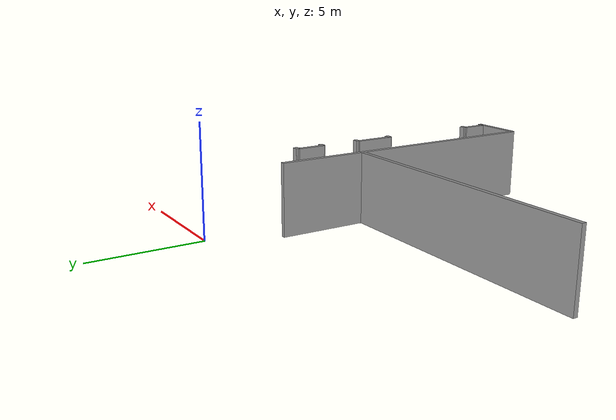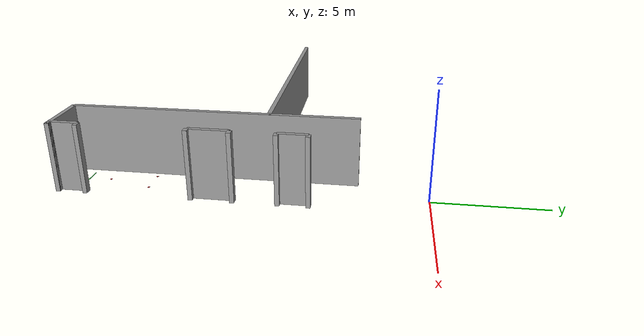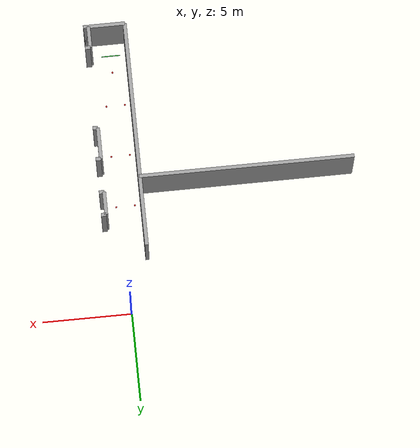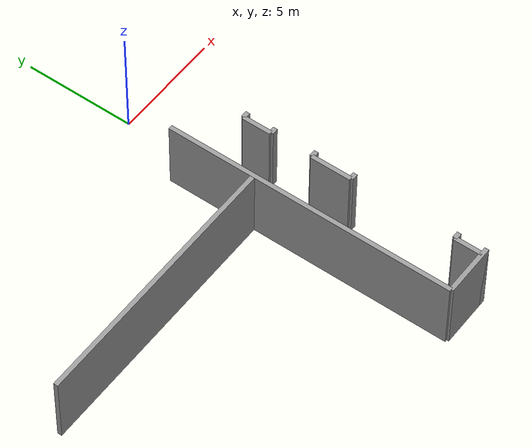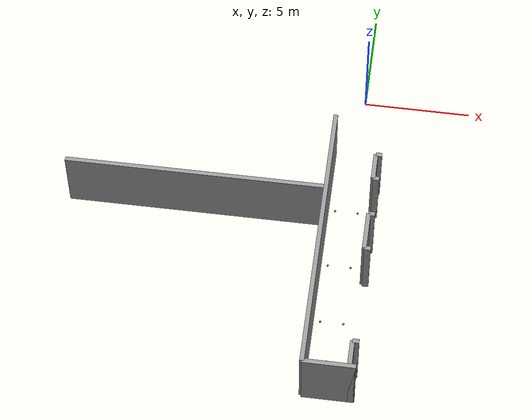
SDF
<sdf version="1.6">
 <world name="square_world">
  <model name="wall4">
   <static>1</static>
   <pose>0 -16.1 1.6 0 -0 0</pose>
   <link name="wall_link">
    <inertial><mass>10000</mass></inertial>
    <collision name="wall_collision">
     <geometry><box><size>2.36 0.2 3.2</size></box></geometry>
     <surface><contact><collide_bitmask>2</collide_bitmask></contact></surface>
    </collision>
    <visual name="wall_visual">
     <geometry><box><size>2.36 0.2 3.2</size></box></geometry>
     <material><script><name>Gazebo/Grey</name><uri>__default__</uri></script></material>
    </visual>
   </link>
  </model>
  <model name="wall7">
   <static>1</static>
   <pose>1.0315 -16.1 1.6 0 -0 0</pose>
   <link name="wall_link">
    <inertial><mass>10000</mass></inertial>
    <collision name="wall_collision">
     <geometry><box><size>0.297 0.2 3.2</size></box></geometry>
     <surface><contact><collide_bitmask>2</collide_bitmask></contact></surface>
    </collision>
    <visual name="wall_visual">
     <geometry><box><size>0.297 0.2 3.2</size></box></geometry>
     <material><script><name>Gazebo/Grey</name><uri>__default__</uri></script></material>
    </visual>
   </link>
  </model>
  <model name="wall8">
   <static>1</static>
   <pose>1.0315 -14.86 1.6 0 -0 0</pose>
   <link name="wall_link">
    <inertial><mass>10000</mass></inertial>
    <collision name="wall_collision">
     <geometry><box><size>0.297 0.2 3.2</size></box></geometry>
     <surface><contact><collide_bitmask>2</collide_bitmask></contact></surface>
    </collision>
    <visual name="wall_visual">
     <geometry><box><size>0.297 0.2 3.2</size></box></geometry>
     <material><script><name>Gazebo/Grey</name><uri>__default__</uri></script></material>
    </visual>
   </link>
  </model>
  <model name="wall9">
   <static>1</static>
   <pose>0.883 -15.48 1.6 0 0 -1.5708</pose>
   <link name="wall_link">
    <inertial><mass>10000</mass></inertial>
    <collision name="wall_collision">
     <geometry><box><size>1.24 0.2 3.2</size></box></geometry>
     <surface><contact><collide_bitmask>2</collide_bitmask></contact></surface>
    </collision>
    <visual name="wall_visual">
     <geometry><box><size>1.24 0.2 3.2</size></box></geometry>
     <material><script><name>Gazebo/Grey</name><uri>__default__</uri></script></material>
    </visual>
   </link>
  </model>
  <model name="wall10">
   <static>1</static>
   <pose>1.035 -10.1 1.6 0 -0 0</pose>
   <link name="wall_link">
    <inertial><mass>10000</mass></inertial>
    <collision name="wall_collision">
     <geometry><box><size>0.29 0.2 3.2</size></box></geometry>
     <surface><contact><collide_bitmask>2</collide_bitmask></contact></surface>
    </collision>
    <visual name="wall_visual">
     <geometry><box><size>0.29 0.2 3.2</size></box></geometry>
     <material><script><name>Gazebo/Grey</name><uri>__default__</uri></script></material>
    </visual>
   </link>
  </model>
  <model name="wall11">
   <static>1</static>
   <pose>1.035 -8.28 1.6 0 -0 0</pose>
   <link name="wall_link">
    <inertial><mass>10000</mass></inertial>
    <collision name="wall_collision">
     <geometry><box><size>0.29 0.2 3.2</size></box></geometry>
     <surface><contact><collide_bitmask>2</collide_bitmask></contact></surface>
    </collision>
    <visual name="wall_visual">
     <geometry><box><size>0.29 0.2 3.2</size></box></geometry>
     <material><script><name>Gazebo/Grey</name><uri>__default__</uri></script></material>
    </visual>
   </link>
  </model>
  <model name="wall12">
   <static>1</static>
   <pose>0.89 -9.19 1.6 0 0 -1.5708</pose>
   <link name="wall_link">
    <inertial><mass>10000</mass></inertial>
    <collision name="wall_collision">
     <geometry><box><size>1.82 0.2 3.2</size></box></geometry>
     <surface><contact><collide_bitmask>2</collide_bitmask></contact></surface>
    </collision>
    <visual name="wall_visual">
     <geometry><box><size>1.82 0.2 3.2</size></box></geometry>
     <material><script><name>Gazebo/Grey</name><uri>__default__</uri></script></material>
    </visual>
   </link>
  </model>
  <model name="wall13">
   <static>1</static>
   <pose>1.0365 -6.34 1.6 0 -0 0</pose>
   <link name="wall_link">
    <inertial><mass>10000</mass></inertial>
    <collision name="wall_collision">
     <geometry><box><size>0.287 0.2 3.2</size></box></geometry>
     <surface><contact><collide_bitmask>2</collide_bitmask></contact></surface>
    </collision>
    <visual name="wall_visual">
     <geometry><box><size>0.287 0.2 3.2</size></box></geometry>
     <material><script><name>Gazebo/Grey</name><uri>__default__</uri></script></material>
    </visual>
   </link>
  </model>
  <model name="wall14">
   <static>1</static>
   <pose>1.0365 -5.03 1.6 0 -0 0</pose>
   <link name="wall_link">
    <inertial><mass>10000</mass></inertial>
    <collision name="wall_collision">
     <geometry><box><size>0.287 0.2 3.2</size></box></geometry>
     <surface><contact><collide_bitmask>2</collide_bitmask></contact></surface>
    </collision>
    <visual name="wall_visual">
     <geometry><box><size>0.287 0.2 3.2</size></box></geometry>
     <material><script><name>Gazebo/Grey</name><uri>__default__</uri></script></material>
    </visual>
   </link>
  </model>
  <model name="wall15">
   <static>1</static>
   <pose>0.893 -5.685 1.6 0 0 -1.5708</pose>
   <link name="wall_link">
    <inertial><mass>10000</mass></inertial>
    <collision name="wall_collision">
     <geometry><box><size>1.31 0.2 3.2</size></box></geometry>
     <surface><contact><collide_bitmask>2</collide_bitmask></contact></surface>
    </collision>
    <visual name="wall_visual">
     <geometry><box><size>1.31 0.2 3.2</size></box></geometry>
     <material><script><name>Gazebo/Grey</name><uri>__default__</uri></script></material>
    </visual>
   </link>
  </model>
  <model name="wall45">
   <static>1</static>
   <pose>-1.18 -9.58 1.6 0 0 -1.5708</pose>
   <link name="wall_link">
    <inertial><mass>10000</mass></inertial>
    <collision name="wall_collision">
     <geometry><box><size>13.04 0.2 3.2</size></box></geometry>
     <surface><contact><collide_bitmask>2</collide_bitmask></contact></surface>
    </collision>
    <visual name="wall_visual">
     <geometry><box><size>13.04 0.2 3.2</size></box></geometry>
     <material><script><name>Gazebo/Grey</name><uri>__default__</uri></script></material>
    </visual>
   </link>
  </model>
  <model name="wall50">
   <static>1</static>
   <pose>-7.17 -7.06 1.6 0 -0 0</pose>
   <link name="wall_link">
    <inertial><mass>10000</mass></inertial>
    <collision name="wall_collision">
     <geometry><box><size>12.07 0.2 3.2</size></box></geometry>
     <surface><contact><collide_bitmask>2</collide_bitmask></contact></surface>
    </collision>
    <visual name="wall_visual">
     <geometry><box><size>12.07 0.2 3.2</size></box></geometry>
     <material><script><name>Gazebo/Grey</name><uri>__default__</uri></script></material>
    </visual>
   </link>
  </model>
  <model name="wall528">
   <static>1</static>
   <pose>-0.25 -15.3 0 0 -0 0</pose>
   <link name="wall_link">
    <inertial><mass>10000</mass></inertial>
    <collision name="wall_collision">
     <geometry><box><size>1.06 0.05 0.001</size></box></geometry>
     <surface><contact><collide_bitmask>2</collide_bitmask></contact></surface>
    </collision>
    <visual name="wall_visual">
     <geometry><box><size>1.06 0.05 0.001</size></box></geometry>
     <material><script><name>Gazebo/Green</name><uri>__default__</uri></script></material>
    </visual>
   </link>
  </model>
  <model name="wall988">
   <static>1</static>
   <pose>0.28 -12.3 0 0 -0 0</pose>
   <link name="wall_link">
    <inertial><mass>10000</mass></inertial>
    <collision name="wall_collision">
     <geometry><cylinder><radius>0.05</radius><length>0.001</length></cylinder></geometry>
     <surface><contact><collide_bitmask>2</collide_bitmask></contact></surface>
    </collision>
    <visual name="wall_visual">
     <geometry><cylinder><radius>0.05</radius><length>0.001</length></cylinder></geometry>
     <material><script><name>Gazebo/Red</name><uri>__default__</uri></script></material>
    </visual>
   </link>
  </model>
  <model name="wall998">
   <static>1</static>
   <pose>0.28 -9.3 0 0 -0 0</pose>
   <link name="wall_link">
    <inertial><mass>10000</mass></inertial>
    <collision name="wall_collision">
     <geometry><cylinder><radius>0.05</radius><length>0.001</length></cylinder></geometry>
     <surface><contact><collide_bitmask>2</collide_bitmask></contact></surface>
    </collision>
    <visual name="wall_visual">
     <geometry><cylinder><radius>0.05</radius><length>0.001</length></cylinder></geometry>
     <material><script><name>Gazebo/Red</name><uri>__default__</uri></script></material>
    </visual>
   </link>
  </model>
  <model name="wall1008">
   <static>1</static>
   <pose>0.28 -6.3 0 0 -0 0</pose>
   <link name="wall_link">
    <inertial><mass>10000</mass></inertial>
    <collision name="wall_collision">
     <geometry><cylinder><radius>0.05</radius><length>0.001</length></cylinder></geometry>
     <surface><contact><collide_bitmask>2</collide_bitmask></contact></surface>
    </collision>
    <visual name="wall_visual">
     <geometry><cylinder><radius>0.05</radius><length>0.001</length></cylinder></geometry>
     <material><script><name>Gazebo/Red</name><uri>__default__</uri></script></material>
    </visual>
   </link>
  </model>
  <model name="wall1078">
   <static>1</static>
   <pose>-0.78 -12.3 0 0 -0 0</pose>
   <link name="wall_link">
    <inertial><mass>10000</mass></inertial>
    <collision name="wall_collision">
     <geometry><cylinder><radius>0.05</radius><length>0.001</length></cylinder></geometry>
     <surface><contact><collide_bitmask>2</collide_bitmask></contact></surface>
    </collision>
    <visual name="wall_visual">
     <geometry><cylinder><radius>0.05</radius><length>0.001</length></cylinder></geometry>
     <material><script><name>Gazebo/Red</name><uri>__default__</uri></script></material>
    </visual>
   </link>
  </model>
  <model name="wall1088">
   <static>1</static>
   <pose>-0.78 -9.3 0 0 -0 0</pose>
   <link name="wall_link">
    <inertial><mass>10000</mass></inertial>
    <collision name="wall_collision">
     <geometry><cylinder><radius>0.05</radius><length>0.001</length></cylinder></geometry>
     <surface><contact><collide_bitmask>2</collide_bitmask></contact></surface>
    </collision>
    <visual name="wall_visual">
     <geometry><cylinder><radius>0.05</radius><length>0.001</length></cylinder></geometry>
     <material><script><name>Gazebo/Red</name><uri>__default__</uri></script></material>
    </visual>
   </link>
  </model>
  <model name="wall1098">
   <static>1</static>
   <pose>-0.78 -6.3 0 0 -0 0</pose>
   <link name="wall_link">
    <inertial><mass>10000</mass></inertial>
    <collision name="wall_collision">
     <geometry><cylinder><radius>0.05</radius><length>0.001</length></cylinder></geometry>
     <surface><contact><collide_bitmask>2</collide_bitmask></contact></surface>
    </collision>
    <visual name="wall_visual">
     <geometry><cylinder><radius>0.05</radius><length>0.001</length></cylinder></geometry>
     <material><script><name>Gazebo/Red</name><uri>__default__</uri></script></material>
    </visual>
   </link>
  </model>
  <model name="wall1288">
   <static>1</static>
   <pose>-0.25 -14.3 0 0 -0 0</pose>
   <link name="wall_link">
    <inertial><mass>10000</mass></inertial>
    <collision name="wall_collision">
     <geometry><cylinder><radius>0.05</radius><length>0.001</length></cylinder></geometry>
     <surface><contact><collide_bitmask>2</collide_bitmask></contact></surface>
    </collision>
    <visual name="wall_visual">
     <geometry><cylinder><radius>0.05</radius><length>0.001</length></cylinder></geometry>
     <material><script><name>Gazebo/Red</name><uri>__default__</uri></script></material>
    </visual>
   </link>
  </model>
 </world>
</sdf>
